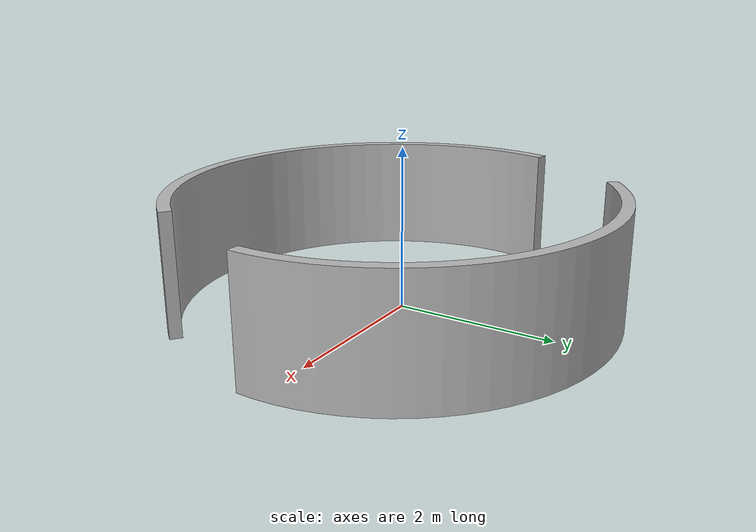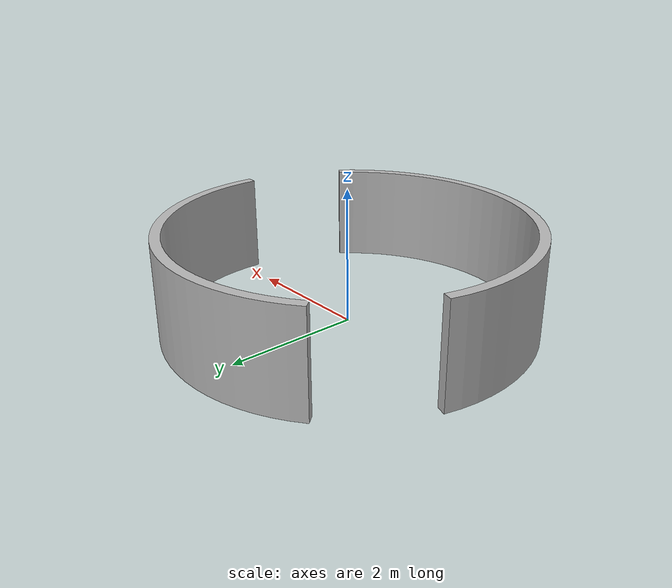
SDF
<?xml version="1.0" ?>
<sdf version="1.5">
  <model name="fire_hydrant">
    <static>true</static>
    <link name="link">
      <collision name="collision">
        <geometry>
          <mesh>
            <uri>model://round_A/meshes/round_A.dae</uri>
          </mesh>
        </geometry>
      </collision>
      <visual name="visual">
        <geometry>
          <mesh>
            <uri>model://round_A/meshes/round_A.dae</uri>
          </mesh>
        </geometry>
      </visual>
    </link>
  </model>
</sdf>
